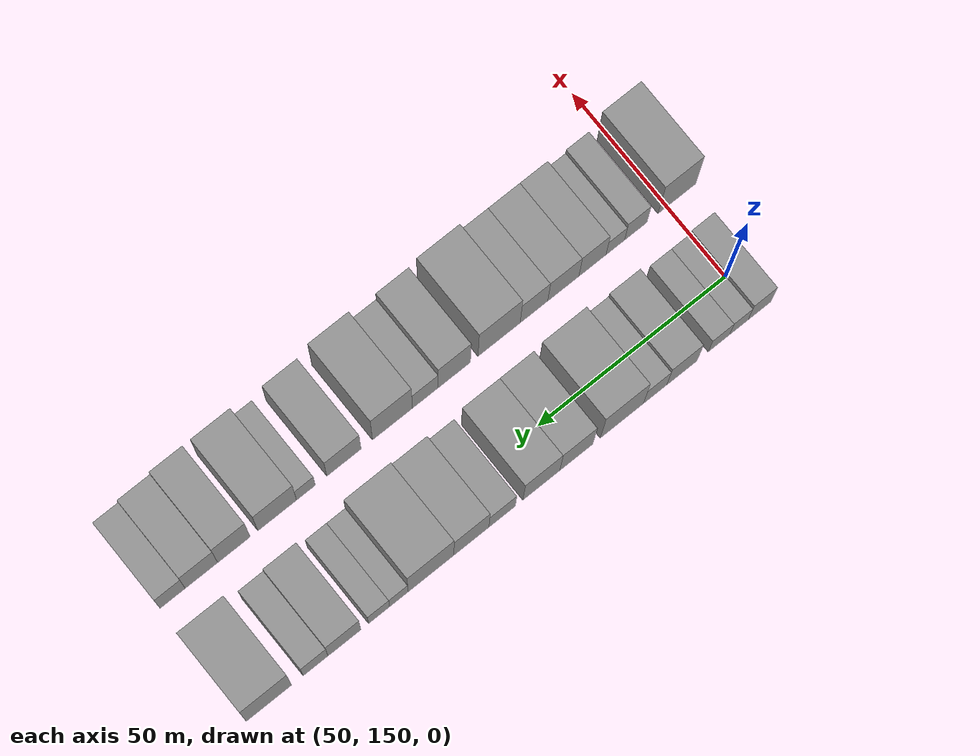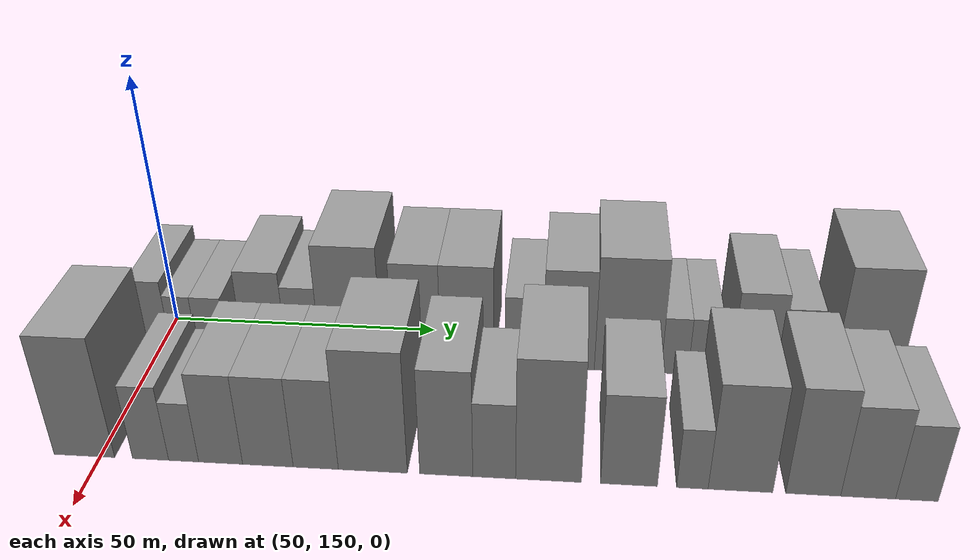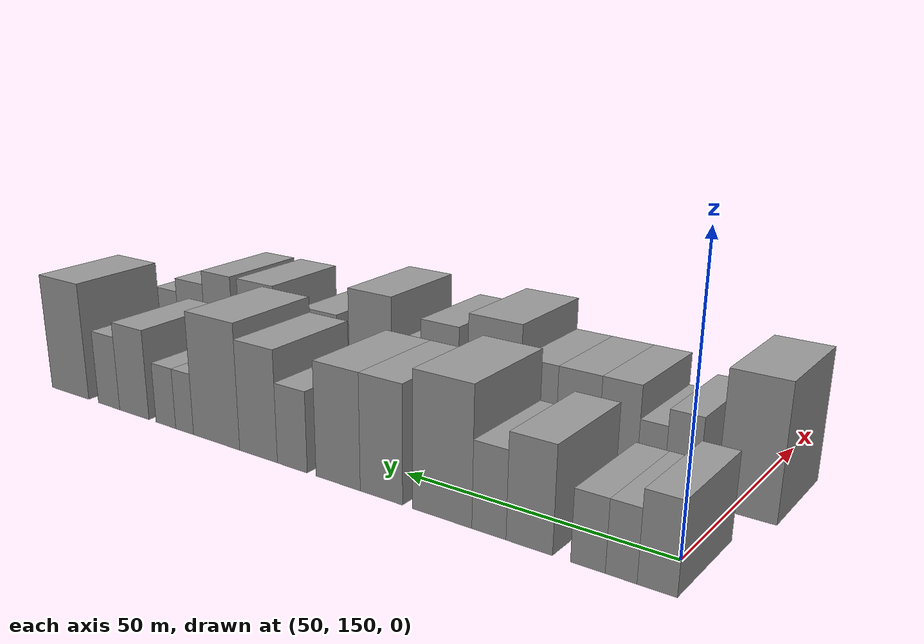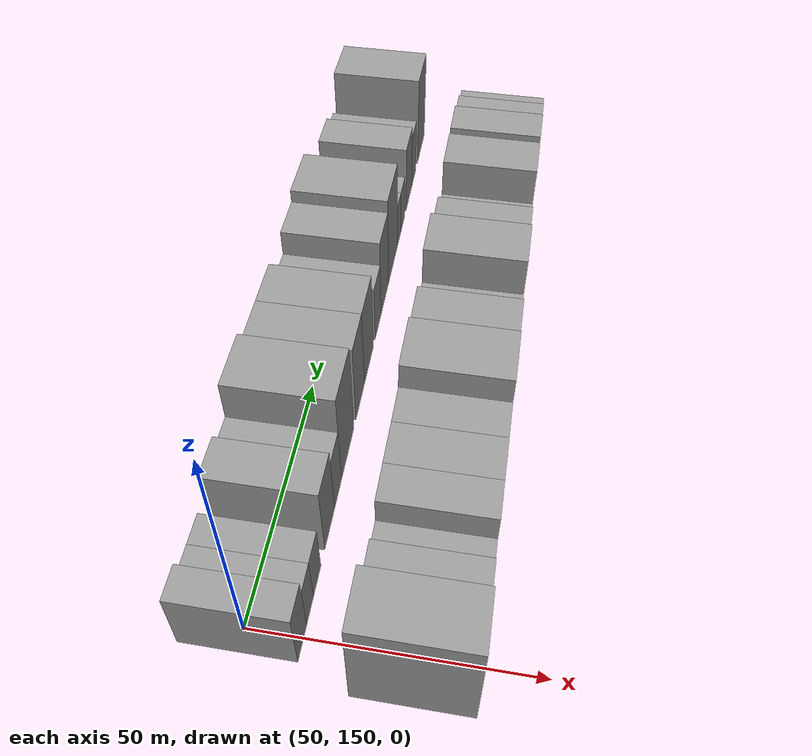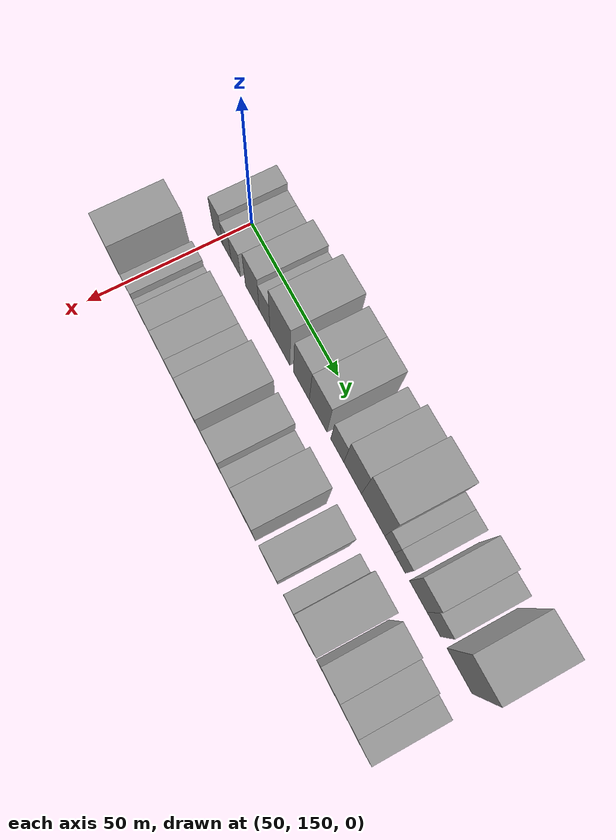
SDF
<sdf version="1.6">
 <world name="default">
  <model name="building_51">
   <static>1</static>
   <pose>50.0000 149.1636 0 0.000000 0.000000 0.000000</pose>
   <link name="link">
    <pose>0 0 7.50 0 0 0</pose>
    <collision name="collision"><geometry><box><size>20.0000 6.1128 15.0000</size></box></geometry></collision>
    <visual name="visual">
     <cast_shadows>0</cast_shadows>
     <geometry><box><size>20.0000 6.1128 15.0000</size></box></geometry>
     <material>
      <script>
       <uri>model://grey_wall/materials/scripts</uri>
       <uri>model://grey_wall/materials/textures</uri>
       <name>vrc/grey_wall</name>
      </script>
     </material>
    </visual>
   </link>
  </model>
  <model name="building_52">
   <static>1</static>
   <pose>50.0000 154.7059 0 0.000000 0.000000 0.000000</pose>
   <link name="link">
    <pose>0 0 6.00 0 0 0</pose>
    <collision name="collision"><geometry><box><size>20.0000 4.9718 12.0000</size></box></geometry></collision>
    <visual name="visual">
     <cast_shadows>0</cast_shadows>
     <geometry><box><size>20.0000 4.9718 12.0000</size></box></geometry>
     <material>
      <script>
       <uri>model://grey_wall/materials/scripts</uri>
       <uri>model://grey_wall/materials/textures</uri>
       <name>vrc/grey_wall</name>
      </script>
     </material>
    </visual>
   </link>
  </model>
  <model name="building_53">
   <static>1</static>
   <pose>50.0000 160.0148 0 0.000000 0.000000 0.000000</pose>
   <link name="link">
    <pose>0 0 6.00 0 0 0</pose>
    <collision name="collision"><geometry><box><size>20.0000 5.6458 12.0000</size></box></geometry></collision>
    <visual name="visual">
     <cast_shadows>0</cast_shadows>
     <geometry><box><size>20.0000 5.6458 12.0000</size></box></geometry>
     <material>
      <script>
       <uri>model://grey_wall/materials/scripts</uri>
       <uri>model://grey_wall/materials/textures</uri>
       <name>vrc/grey_wall</name>
      </script>
     </material>
    </visual>
   </link>
  </model>
  <model name="building_54">
   <static>1</static>
   <pose>50.0000 169.8878 0 0.000000 0.000000 0.000000</pose>
   <link name="link">
    <pose>0 0 9.00 0 0 0</pose>
    <collision name="collision"><geometry><box><size>20.0000 8.1002 18.0000</size></box></geometry></collision>
    <visual name="visual">
     <cast_shadows>0</cast_shadows>
     <geometry><box><size>20.0000 8.1002 18.0000</size></box></geometry>
     <material>
      <script>
       <uri>model://grey_wall/materials/scripts</uri>
       <uri>model://grey_wall/materials/textures</uri>
       <name>vrc/grey_wall</name>
      </script>
     </material>
    </visual>
   </link>
  </model>
  <model name="building_55">
   <static>1</static>
   <pose>50.0000 177.0478 0 0.000000 0.000000 0.000000</pose>
   <link name="link">
    <pose>0 0 7.50 0 0 0</pose>
    <collision name="collision"><geometry><box><size>20.0000 6.2198 15.0000</size></box></geometry></collision>
    <visual name="visual">
     <cast_shadows>0</cast_shadows>
     <geometry><box><size>20.0000 6.2198 15.0000</size></box></geometry>
     <material>
      <script>
       <uri>model://grey_wall/materials/scripts</uri>
       <uri>model://grey_wall/materials/textures</uri>
       <name>vrc/grey_wall</name>
      </script>
     </material>
    </visual>
   </link>
  </model>
  <model name="building_56">
   <static>1</static>
   <pose>50.0000 185.8638 0 0.000000 0.000000 0.000000</pose>
   <link name="link">
    <pose>0 0 12.00 0 0 0</pose>
    <collision name="collision"><geometry><box><size>20.0000 11.4121 24.0000</size></box></geometry></collision>
    <visual name="visual">
     <cast_shadows>0</cast_shadows>
     <geometry><box><size>20.0000 11.4121 24.0000</size></box></geometry>
     <material>
      <script>
       <uri>model://grey_wall/materials/scripts</uri>
       <uri>model://grey_wall/materials/textures</uri>
       <name>vrc/grey_wall</name>
      </script>
     </material>
    </visual>
   </link>
  </model>
  <model name="building_57">
   <static>1</static>
   <pose>50.0000 197.9600 0 0.000000 0.000000 0.000000</pose>
   <link name="link">
    <pose>0 0 10.50 0 0 0</pose>
    <collision name="collision"><geometry><box><size>20.0000 8.7803 21.0000</size></box></geometry></collision>
    <visual name="visual">
     <cast_shadows>0</cast_shadows>
     <geometry><box><size>20.0000 8.7803 21.0000</size></box></geometry>
     <material>
      <script>
       <uri>model://grey_wall/materials/scripts</uri>
       <uri>model://grey_wall/materials/textures</uri>
       <name>vrc/grey_wall</name>
      </script>
     </material>
    </visual>
   </link>
  </model>
  <model name="building_58">
   <static>1</static>
   <pose>50.0000 207.1972 0 0.000000 0.000000 0.000000</pose>
   <link name="link">
    <pose>0 0 10.50 0 0 0</pose>
    <collision name="collision"><geometry><box><size>20.0000 9.6941 21.0000</size></box></geometry></collision>
    <visual name="visual">
     <cast_shadows>0</cast_shadows>
     <geometry><box><size>20.0000 9.6941 21.0000</size></box></geometry>
     <material>
      <script>
       <uri>model://grey_wall/materials/scripts</uri>
       <uri>model://grey_wall/materials/textures</uri>
       <name>vrc/grey_wall</name>
      </script>
     </material>
    </visual>
   </link>
  </model>
  <model name="building_59">
   <static>1</static>
   <pose>50.0000 217.5171 0 0.000000 0.000000 0.000000</pose>
   <link name="link">
    <pose>0 0 7.50 0 0 0</pose>
    <collision name="collision"><geometry><box><size>20.0000 6.9457 15.0000</size></box></geometry></collision>
    <visual name="visual">
     <cast_shadows>0</cast_shadows>
     <geometry><box><size>20.0000 6.9457 15.0000</size></box></geometry>
     <material>
      <script>
       <uri>model://grey_wall/materials/scripts</uri>
       <uri>model://grey_wall/materials/textures</uri>
       <name>vrc/grey_wall</name>
      </script>
     </material>
    </visual>
   </link>
  </model>
  <model name="building_60">
   <static>1</static>
   <pose>50.0000 225.5878 0 0.000000 0.000000 0.000000</pose>
   <link name="link">
    <pose>0 0 10.50 0 0 0</pose>
    <collision name="collision"><geometry><box><size>20.0000 9.1957 21.0000</size></box></geometry></collision>
    <visual name="visual">
     <cast_shadows>0</cast_shadows>
     <geometry><box><size>20.0000 9.1957 21.0000</size></box></geometry>
     <material>
      <script>
       <uri>model://grey_wall/materials/scripts</uri>
       <uri>model://grey_wall/materials/textures</uri>
       <name>vrc/grey_wall</name>
      </script>
     </material>
    </visual>
   </link>
  </model>
  <model name="building_61">
   <static>1</static>
   <pose>50.0000 236.1583 0 0.000000 0.000000 0.000000</pose>
   <link name="link">
    <pose>0 0 12.00 0 0 0</pose>
    <collision name="collision"><geometry><box><size>20.0000 11.9453 24.0000</size></box></geometry></collision>
    <visual name="visual">
     <cast_shadows>0</cast_shadows>
     <geometry><box><size>20.0000 11.9453 24.0000</size></box></geometry>
     <material>
      <script>
       <uri>model://grey_wall/materials/scripts</uri>
       <uri>model://grey_wall/materials/textures</uri>
       <name>vrc/grey_wall</name>
      </script>
     </material>
    </visual>
   </link>
  </model>
  <model name="building_62">
   <static>1</static>
   <pose>50.0000 244.5400 0 0.000000 0.000000 0.000000</pose>
   <link name="link">
    <pose>0 0 6.00 0 0 0</pose>
    <collision name="collision"><geometry><box><size>20.0000 4.8182 12.0000</size></box></geometry></collision>
    <visual name="visual">
     <cast_shadows>0</cast_shadows>
     <geometry><box><size>20.0000 4.8182 12.0000</size></box></geometry>
     <material>
      <script>
       <uri>model://grey_wall/materials/scripts</uri>
       <uri>model://grey_wall/materials/textures</uri>
       <name>vrc/grey_wall</name>
      </script>
     </material>
    </visual>
   </link>
  </model>
  <model name="building_63">
   <static>1</static>
   <pose>50.0000 249.6836 0 0.000000 0.000000 0.000000</pose>
   <link name="link">
    <pose>0 0 6.00 0 0 0</pose>
    <collision name="collision"><geometry><box><size>20.0000 5.4691 12.0000</size></box></geometry></collision>
    <visual name="visual">
     <cast_shadows>0</cast_shadows>
     <geometry><box><size>20.0000 5.4691 12.0000</size></box></geometry>
     <material>
      <script>
       <uri>model://grey_wall/materials/scripts</uri>
       <uri>model://grey_wall/materials/textures</uri>
       <name>vrc/grey_wall</name>
      </script>
     </material>
    </visual>
   </link>
  </model>
  <model name="building_64">
   <static>1</static>
   <pose>50.0000 258.6771 0 0.000000 0.000000 0.000000</pose>
   <link name="link">
    <pose>0 0 9.00 0 0 0</pose>
    <collision name="collision"><geometry><box><size>20.0000 8.5179 18.0000</size></box></geometry></collision>
    <visual name="visual">
     <cast_shadows>0</cast_shadows>
     <geometry><box><size>20.0000 8.5179 18.0000</size></box></geometry>
     <material>
      <script>
       <uri>model://grey_wall/materials/scripts</uri>
       <uri>model://grey_wall/materials/textures</uri>
       <name>vrc/grey_wall</name>
      </script>
     </material>
    </visual>
   </link>
  </model>
  <model name="building_65">
   <static>1</static>
   <pose>50.0000 266.1465 0 0.000000 0.000000 0.000000</pose>
   <link name="link">
    <pose>0 0 7.50 0 0 0</pose>
    <collision name="collision"><geometry><box><size>20.0000 6.4209 15.0000</size></box></geometry></collision>
    <visual name="visual">
     <cast_shadows>0</cast_shadows>
     <geometry><box><size>20.0000 6.4209 15.0000</size></box></geometry>
     <material>
      <script>
       <uri>model://grey_wall/materials/scripts</uri>
       <uri>model://grey_wall/materials/textures</uri>
       <name>vrc/grey_wall</name>
      </script>
     </material>
    </visual>
   </link>
  </model>
  <model name="building_66">
   <static>1</static>
   <pose>50.0000 278.1975 0 0.000000 0.000000 0.000000</pose>
   <link name="link">
    <pose>0 0 12.00 0 0 0</pose>
    <collision name="collision"><geometry><box><size>20.0000 11.6810 24.0000</size></box></geometry></collision>
    <visual name="visual">
     <cast_shadows>0</cast_shadows>
     <geometry><box><size>20.0000 11.6810 24.0000</size></box></geometry>
     <material>
      <script>
       <uri>model://grey_wall/materials/scripts</uri>
       <uri>model://grey_wall/materials/textures</uri>
       <name>vrc/grey_wall</name>
      </script>
     </material>
    </visual>
   </link>
  </model>
  <model name="building_113">
   <static>1</static>
   <pose>79.0000 147.3253 0 0.000000 0.000000 0.000000</pose>
   <link name="link">
    <pose>0 0 12.00 0 0 0</pose>
    <collision name="collision"><geometry><box><size>20.0000 10.1382 24.0000</size></box></geometry></collision>
    <visual name="visual">
     <cast_shadows>0</cast_shadows>
     <geometry><box><size>20.0000 10.1382 24.0000</size></box></geometry>
     <material>
      <script>
       <uri>model://grey_wall/materials/scripts</uri>
       <uri>model://grey_wall/materials/textures</uri>
       <name>vrc/grey_wall</name>
      </script>
     </material>
    </visual>
   </link>
  </model>
  <model name="building_114">
   <static>1</static>
   <pose>79.0000 158.3955 0 0.000000 0.000000 0.000000</pose>
   <link name="link">
    <pose>0 0 7.50 0 0 0</pose>
    <collision name="collision"><geometry><box><size>20.0000 6.0021 15.0000</size></box></geometry></collision>
    <visual name="visual">
     <cast_shadows>0</cast_shadows>
     <geometry><box><size>20.0000 6.0021 15.0000</size></box></geometry>
     <material>
      <script>
       <uri>model://grey_wall/materials/scripts</uri>
       <uri>model://grey_wall/materials/textures</uri>
       <name>vrc/grey_wall</name>
      </script>
     </material>
    </visual>
   </link>
  </model>
  <model name="building_115">
   <static>1</static>
   <pose>79.0000 163.8757 0 0.000000 0.000000 0.000000</pose>
   <link name="link">
    <pose>0 0 6.00 0 0 0</pose>
    <collision name="collision"><geometry><box><size>20.0000 4.9582 12.0000</size></box></geometry></collision>
    <visual name="visual">
     <cast_shadows>0</cast_shadows>
     <geometry><box><size>20.0000 4.9582 12.0000</size></box></geometry>
     <material>
      <script>
       <uri>model://grey_wall/materials/scripts</uri>
       <uri>model://grey_wall/materials/textures</uri>
       <name>vrc/grey_wall</name>
      </script>
     </material>
    </visual>
   </link>
  </model>
  <model name="building_116">
   <static>1</static>
   <pose>79.0000 169.9826 0 0.000000 0.000000 0.000000</pose>
   <link name="link">
    <pose>0 0 9.00 0 0 0</pose>
    <collision name="collision"><geometry><box><size>20.0000 7.2557 18.0000</size></box></geometry></collision>
    <visual name="visual">
     <cast_shadows>0</cast_shadows>
     <geometry><box><size>20.0000 7.2557 18.0000</size></box></geometry>
     <material>
      <script>
       <uri>model://grey_wall/materials/scripts</uri>
       <uri>model://grey_wall/materials/textures</uri>
       <name>vrc/grey_wall</name>
      </script>
     </material>
    </visual>
   </link>
  </model>
  <model name="building_117">
   <static>1</static>
   <pose>79.0000 177.7579 0 0.000000 0.000000 0.000000</pose>
   <link name="link">
    <pose>0 0 9.00 0 0 0</pose>
    <collision name="collision"><geometry><box><size>20.0000 8.2948 18.0000</size></box></geometry></collision>
    <visual name="visual">
     <cast_shadows>0</cast_shadows>
     <geometry><box><size>20.0000 8.2948 18.0000</size></box></geometry>
     <material>
      <script>
       <uri>model://grey_wall/materials/scripts</uri>
       <uri>model://grey_wall/materials/textures</uri>
       <name>vrc/grey_wall</name>
      </script>
     </material>
    </visual>
   </link>
  </model>
  <model name="building_118">
   <static>1</static>
   <pose>79.0000 185.5837 0 0.000000 0.000000 0.000000</pose>
   <link name="link">
    <pose>0 0 9.00 0 0 0</pose>
    <collision name="collision"><geometry><box><size>20.0000 7.3568 18.0000</size></box></geometry></collision>
    <visual name="visual">
     <cast_shadows>0</cast_shadows>
     <geometry><box><size>20.0000 7.3568 18.0000</size></box></geometry>
     <material>
      <script>
       <uri>model://grey_wall/materials/scripts</uri>
       <uri>model://grey_wall/materials/textures</uri>
       <name>vrc/grey_wall</name>
      </script>
     </material>
    </visual>
   </link>
  </model>
  <model name="building_119">
   <static>1</static>
   <pose>79.0000 194.8540 0 0.000000 0.000000 0.000000</pose>
   <link name="link">
    <pose>0 0 12.00 0 0 0</pose>
    <collision name="collision"><geometry><box><size>20.0000 11.1837 24.0000</size></box></geometry></collision>
    <visual name="visual">
     <cast_shadows>0</cast_shadows>
     <geometry><box><size>20.0000 11.1837 24.0000</size></box></geometry>
     <material>
      <script>
       <uri>model://grey_wall/materials/scripts</uri>
       <uri>model://grey_wall/materials/textures</uri>
       <name>vrc/grey_wall</name>
      </script>
     </material>
    </visual>
   </link>
  </model>
  <model name="building_120">
   <static>1</static>
   <pose>79.0000 206.7039 0 0.000000 0.000000 0.000000</pose>
   <link name="link">
    <pose>0 0 10.50 0 0 0</pose>
    <collision name="collision"><geometry><box><size>20.0000 8.5161 21.0000</size></box></geometry></collision>
    <visual name="visual">
     <cast_shadows>0</cast_shadows>
     <geometry><box><size>20.0000 8.5161 21.0000</size></box></geometry>
     <material>
      <script>
       <uri>model://grey_wall/materials/scripts</uri>
       <uri>model://grey_wall/materials/textures</uri>
       <name>vrc/grey_wall</name>
      </script>
     </material>
    </visual>
   </link>
  </model>
  <model name="building_121">
   <static>1</static>
   <pose>79.0000 214.3756 0 0.000000 0.000000 0.000000</pose>
   <link name="link">
    <pose>0 0 7.50 0 0 0</pose>
    <collision name="collision"><geometry><box><size>20.0000 6.8272 15.0000</size></box></geometry></collision>
    <visual name="visual">
     <cast_shadows>0</cast_shadows>
     <geometry><box><size>20.0000 6.8272 15.0000</size></box></geometry>
     <material>
      <script>
       <uri>model://grey_wall/materials/scripts</uri>
       <uri>model://grey_wall/materials/textures</uri>
       <name>vrc/grey_wall</name>
      </script>
     </material>
    </visual>
   </link>
  </model>
  <model name="building_122">
   <static>1</static>
   <pose>79.0000 223.0166 0 0.000000 0.000000 0.000000</pose>
   <link name="link">
    <pose>0 0 12.00 0 0 0</pose>
    <collision name="collision"><geometry><box><size>20.0000 10.4547 24.0000</size></box></geometry></collision>
    <visual name="visual">
     <cast_shadows>0</cast_shadows>
     <geometry><box><size>20.0000 10.4547 24.0000</size></box></geometry>
     <material>
      <script>
       <uri>model://grey_wall/materials/scripts</uri>
       <uri>model://grey_wall/materials/textures</uri>
       <name>vrc/grey_wall</name>
      </script>
     </material>
    </visual>
   </link>
  </model>
  <model name="building_123">
   <static>1</static>
   <pose>79.0000 235.7285 0 0.000000 0.000000 0.000000</pose>
   <link name="link">
    <pose>0 0 9.00 0 0 0</pose>
    <collision name="collision"><geometry><box><size>20.0000 8.9692 18.0000</size></box></geometry></collision>
    <visual name="visual">
     <cast_shadows>0</cast_shadows>
     <geometry><box><size>20.0000 8.9692 18.0000</size></box></geometry>
     <material>
      <script>
       <uri>model://grey_wall/materials/scripts</uri>
       <uri>model://grey_wall/materials/textures</uri>
       <name>vrc/grey_wall</name>
      </script>
     </material>
    </visual>
   </link>
  </model>
  <model name="building_124">
   <static>1</static>
   <pose>79.0000 245.6653 0 0.000000 0.000000 0.000000</pose>
   <link name="link">
    <pose>0 0 6.00 0 0 0</pose>
    <collision name="collision"><geometry><box><size>20.0000 4.9044 12.0000</size></box></geometry></collision>
    <visual name="visual">
     <cast_shadows>0</cast_shadows>
     <geometry><box><size>20.0000 4.9044 12.0000</size></box></geometry>
     <material>
      <script>
       <uri>model://grey_wall/materials/scripts</uri>
       <uri>model://grey_wall/materials/textures</uri>
       <name>vrc/grey_wall</name>
      </script>
     </material>
    </visual>
   </link>
  </model>
  <model name="building_125">
   <static>1</static>
   <pose>79.0000 253.1527 0 0.000000 0.000000 0.000000</pose>
   <link name="link">
    <pose>0 0 10.50 0 0 0</pose>
    <collision name="collision"><geometry><box><size>20.0000 10.0702 21.0000</size></box></geometry></collision>
    <visual name="visual">
     <cast_shadows>0</cast_shadows>
     <geometry><box><size>20.0000 10.0702 21.0000</size></box></geometry>
     <material>
      <script>
       <uri>model://grey_wall/materials/scripts</uri>
       <uri>model://grey_wall/materials/textures</uri>
       <name>vrc/grey_wall</name>
      </script>
     </material>
    </visual>
   </link>
  </model>
  <model name="building_126">
   <static>1</static>
   <pose>79.0000 264.4059 0 0.000000 0.000000 0.000000</pose>
   <link name="link">
    <pose>0 0 10.50 0 0 0</pose>
    <collision name="collision"><geometry><box><size>20.0000 8.4362 21.0000</size></box></geometry></collision>
    <visual name="visual">
     <cast_shadows>0</cast_shadows>
     <geometry><box><size>20.0000 8.4362 21.0000</size></box></geometry>
     <material>
      <script>
       <uri>model://grey_wall/materials/scripts</uri>
       <uri>model://grey_wall/materials/textures</uri>
       <name>vrc/grey_wall</name>
      </script>
     </material>
    </visual>
   </link>
  </model>
  <model name="building_127">
   <static>1</static>
   <pose>79.0000 272.8219 0 0.000000 0.000000 0.000000</pose>
   <link name="link">
    <pose>0 0 9.00 0 0 0</pose>
    <collision name="collision"><geometry><box><size>20.0000 8.3958 18.0000</size></box></geometry></collision>
    <visual name="visual">
     <cast_shadows>0</cast_shadows>
     <geometry><box><size>20.0000 8.3958 18.0000</size></box></geometry>
     <material>
      <script>
       <uri>model://grey_wall/materials/scripts</uri>
       <uri>model://grey_wall/materials/textures</uri>
       <name>vrc/grey_wall</name>
      </script>
     </material>
    </visual>
   </link>
  </model>
  <model name="building_128">
   <static>1</static>
   <pose>79.0000 280.2776 0 0.000000 0.000000 0.000000</pose>
   <link name="link">
    <pose>0 0 7.50 0 0 0</pose>
    <collision name="collision"><geometry><box><size>20.0000 6.5157 15.0000</size></box></geometry></collision>
    <visual name="visual">
     <cast_shadows>0</cast_shadows>
     <geometry><box><size>20.0000 6.5157 15.0000</size></box></geometry>
     <material>
      <script>
       <uri>model://grey_wall/materials/scripts</uri>
       <uri>model://grey_wall/materials/textures</uri>
       <name>vrc/grey_wall</name>
      </script>
     </material>
    </visual>
   </link>
  </model>
 </world>
</sdf>
